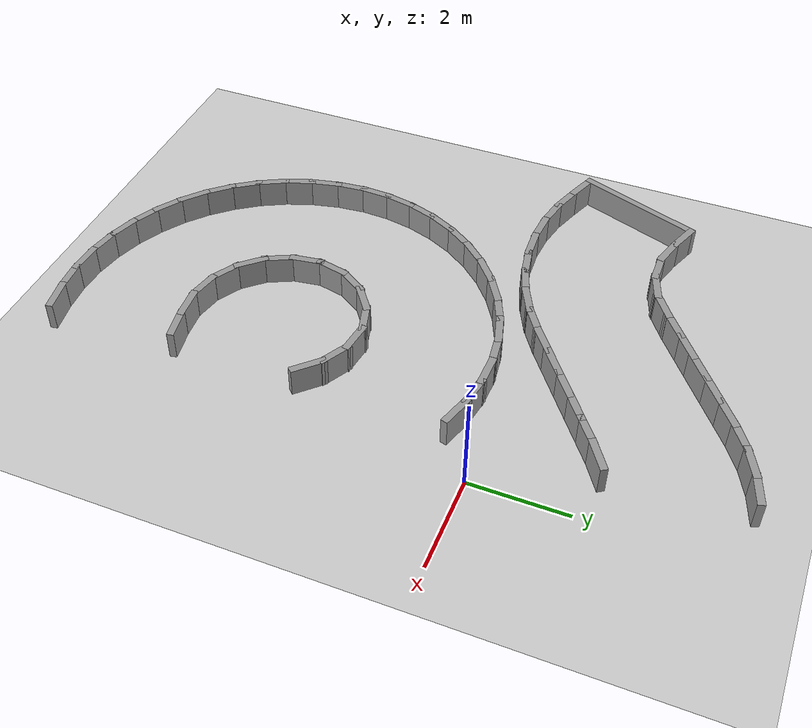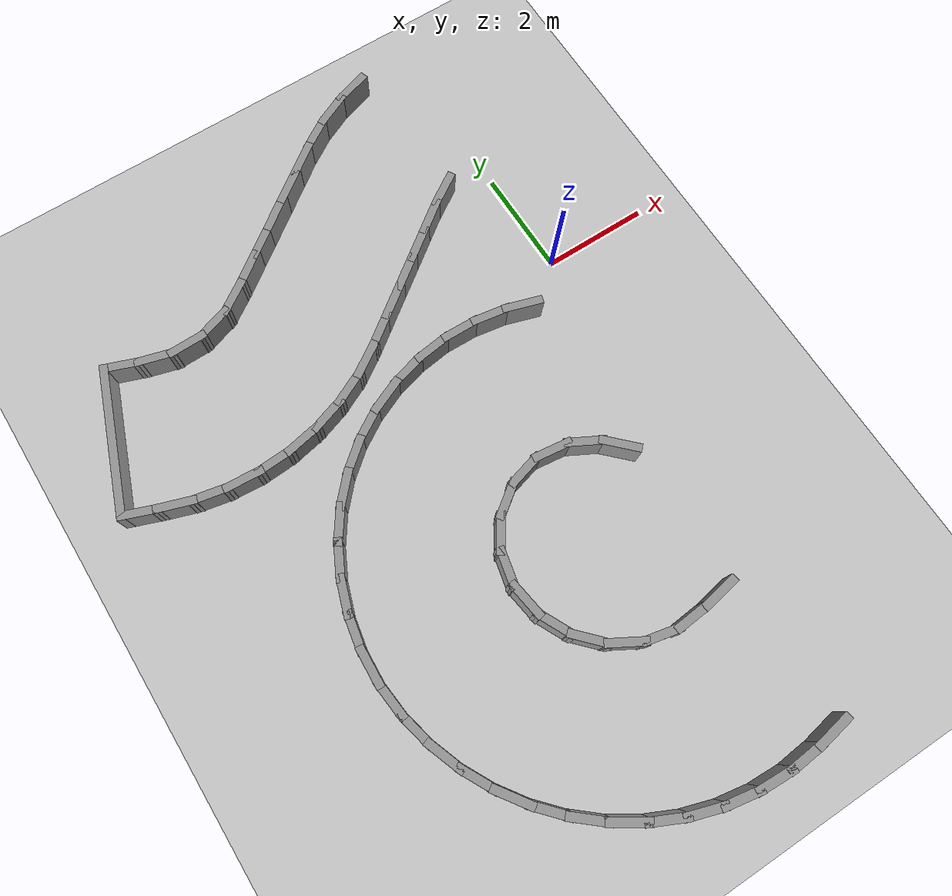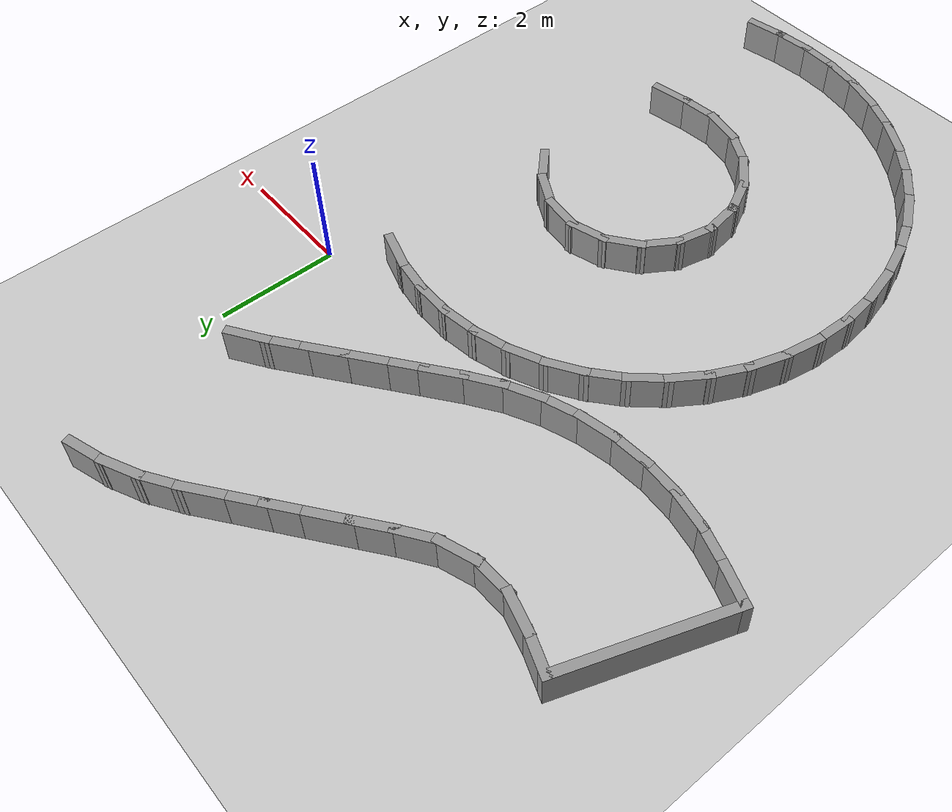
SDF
<sdf version="1.7">
 <world name="default">
  <model name="ground_plane">
   <static>1</static>
   <link name="link">
    <collision name="collision">
     <geometry><plane><normal>0 0 1</normal><size>100 100</size></plane></geometry>
     <surface><friction><ode><mu>100</mu><mu2>50</mu2></ode></friction></surface>
    </collision>
    <visual name="visual">
     <cast_shadows>0</cast_shadows>
     <geometry><plane><normal>0 0 1</normal><size>100 100</size></plane></geometry>
     <material>
      <script><uri>file://media/materials/scripts/gazebo.material</uri><name>Gazebo/Grey</name></script>
     </material>
    </visual>
   </link>
  </model>
  <model name="rand_turn_10">
   <link name="Wall_0">
    <collision name="Wall_0_Collision">
     <geometry><box><size>0.7500 0.1500 0.6000</size></box></geometry>
     <pose>0 0 0.3000 0 -0 0</pose>
    </collision>
    <visual name="Wall_0_Visual">
     <pose>0 0 0.3000 0 -0 0</pose>
     <geometry><box><size>0.7500 0.1500 0.6000</size></box></geometry>
     <material>
      <script><uri>file://media/materials/scripts/gazebo.material</uri><name>Gazebo/Grey</name></script>
      <ambient>1 1 1 1</ambient>
     </material>
    </visual>
    <pose>-7.6169 2.1796 0 0 -0 -0.35750</pose>
   </link>
   <link name="Wall_1">
    <collision name="Wall_1_Collision">
     <geometry><box><size>0.7483 0.1500 0.6000</size></box></geometry>
     <pose>0 0 0.3000 0 -0 0</pose>
    </collision>
    <visual name="Wall_1_Visual">
     <pose>0 0 0.3000 0 -0 0</pose>
     <geometry><box><size>0.7483 0.1500 0.6000</size></box></geometry>
     <material>
      <script><uri>file://media/materials/scripts/gazebo.material</uri><name>Gazebo/Grey</name></script>
      <ambient>1 1 1 1</ambient>
     </material>
    </visual>
    <pose>-7.0479 1.9939 0 0 -0 -0.27353</pose>
   </link>
   <link name="Wall_2">
    <collision name="Wall_2_Collision">
     <geometry><box><size>0.7478 0.1500 0.6000</size></box></geometry>
     <pose>0 0 0.3000 0 -0 0</pose>
    </collision>
    <visual name="Wall_2_Visual">
     <pose>0 0 0.3000 0 -0 0</pose>
     <geometry><box><size>0.7478 0.1500 0.6000</size></box></geometry>
     <material>
      <script><uri>file://media/materials/scripts/gazebo.material</uri><name>Gazebo/Grey</name></script>
      <ambient>1 1 1 1</ambient>
     </material>
    </visual>
    <pose>-6.4610 1.9186 0 0 -0 0.01854</pose>
   </link>
   <link name="Wall_3">
    <collision name="Wall_3_Collision">
     <geometry><box><size>0.7478 0.1500 0.6000</size></box></geometry>
     <pose>0 0 0.3000 0 -0 0</pose>
    </collision>
    <visual name="Wall_3_Visual">
     <pose>0 0 0.3000 0 -0 0</pose>
     <geometry><box><size>0.7478 0.1500 0.6000</size></box></geometry>
     <material>
      <script><uri>file://media/materials/scripts/gazebo.material</uri><name>Gazebo/Grey</name></script>
      <ambient>1 1 1 1</ambient>
     </material>
    </visual>
    <pose>-5.8784 2.0180 0 0 -0 0.31936</pose>
   </link>
   <link name="Wall_4">
    <collision name="Wall_4_Collision">
     <geometry><box><size>0.7491 0.1500 0.6000</size></box></geometry>
     <pose>0 0 0.3000 0 -0 0</pose>
    </collision>
    <visual name="Wall_4_Visual">
     <pose>0 0 0.3000 0 -0 0</pose>
     <geometry><box><size>0.7491 0.1500 0.6000</size></box></geometry>
     <material>
      <script><uri>file://media/materials/scripts/gazebo.material</uri><name>Gazebo/Grey</name></script>
      <ambient>1 1 1 1</ambient>
     </material>
    </visual>
    <pose>-5.3456 2.2783 0 0 -0 0.58934</pose>
   </link>
   <link name="Wall_5">
    <collision name="Wall_5_Collision">
     <geometry><box><size>0.7500 0.1500 0.6000</size></box></geometry>
     <pose>0 0 0.3000 0 -0 0</pose>
    </collision>
    <visual name="Wall_5_Visual">
     <pose>0 0 0.3000 0 -0 0</pose>
     <geometry><box><size>0.7500 0.1500 0.6000</size></box></geometry>
     <material>
      <script><uri>file://media/materials/scripts/gazebo.material</uri><name>Gazebo/Grey</name></script>
      <ambient>1 1 1 1</ambient>
     </material>
    </visual>
    <pose>-4.8548 2.6224 0 0 -0 0.63349</pose>
   </link>
   <link name="Wall_6">
    <collision name="Wall_6_Collision">
     <geometry><box><size>0.7500 0.1500 0.6000</size></box></geometry>
     <pose>0 0 0.3000 0 -0 0</pose>
    </collision>
    <visual name="Wall_6_Visual">
     <pose>0 0 0.3000 0 -0 0</pose>
     <geometry><box><size>0.7500 0.1500 0.6000</size></box></geometry>
     <material>
      <script><uri>file://media/materials/scripts/gazebo.material</uri><name>Gazebo/Grey</name></script>
      <ambient>1 1 1 1</ambient>
     </material>
    </visual>
    <pose>-4.3712 2.9776 0 0 -0 0.63349</pose>
   </link>
   <link name="Wall_7">
    <collision name="Wall_7_Collision">
     <geometry><box><size>0.7500 0.1500 0.6000</size></box></geometry>
     <pose>0 0 0.3000 0 -0 0</pose>
    </collision>
    <visual name="Wall_7_Visual">
     <pose>0 0 0.3000 0 -0 0</pose>
     <geometry><box><size>0.7500 0.1500 0.6000</size></box></geometry>
     <material>
      <script><uri>file://media/materials/scripts/gazebo.material</uri><name>Gazebo/Grey</name></script>
      <ambient>1 1 1 1</ambient>
     </material>
    </visual>
    <pose>-3.8876 3.3327 0 0 -0 0.63349</pose>
   </link>
   <link name="Wall_8">
    <collision name="Wall_8_Collision">
     <geometry><box><size>0.7500 0.1500 0.6000</size></box></geometry>
     <pose>0 0 0.3000 0 -0 0</pose>
    </collision>
    <visual name="Wall_8_Visual">
     <pose>0 0 0.3000 0 -0 0</pose>
     <geometry><box><size>0.7500 0.1500 0.6000</size></box></geometry>
     <material>
      <script><uri>file://media/materials/scripts/gazebo.material</uri><name>Gazebo/Grey</name></script>
      <ambient>1 1 1 1</ambient>
     </material>
    </visual>
    <pose>-3.4040 3.6879 0 0 -0 0.63349</pose>
   </link>
   <link name="Wall_9">
    <collision name="Wall_9_Collision">
     <geometry><box><size>0.7500 0.1500 0.6000</size></box></geometry>
     <pose>0 0 0.3000 0 -0 0</pose>
    </collision>
    <visual name="Wall_9_Visual">
     <pose>0 0 0.3000 0 -0 0</pose>
     <geometry><box><size>0.7500 0.1500 0.6000</size></box></geometry>
     <material>
      <script><uri>file://media/materials/scripts/gazebo.material</uri><name>Gazebo/Grey</name></script>
      <ambient>1 1 1 1</ambient>
     </material>
    </visual>
    <pose>-2.9204 4.0431 0 0 -0 0.63331</pose>
   </link>
   <link name="Wall_10">
    <collision name="Wall_10_Collision">
     <geometry><box><size>0.7496 0.1500 0.6000</size></box></geometry>
     <pose>0 0 0.3000 0 -0 0</pose>
    </collision>
    <visual name="Wall_10_Visual">
     <pose>0 0 0.3000 0 -0 0</pose>
     <geometry><box><size>0.7496 0.1500 0.6000</size></box></geometry>
     <material>
      <script><uri>file://media/materials/scripts/gazebo.material</uri><name>Gazebo/Grey</name></script>
      <ambient>1 1 1 1</ambient>
     </material>
    </visual>
    <pose>-2.4254 4.3810 0 0 -0 0.56464</pose>
   </link>
   <link name="Wall_11">
    <collision name="Wall_11_Collision">
     <geometry><box><size>0.7495 0.1500 0.6000</size></box></geometry>
     <pose>0 0 0.3000 0 -0 0</pose>
    </collision>
    <visual name="Wall_11_Visual">
     <pose>0 0 0.3000 0 -0 0</pose>
     <geometry><box><size>0.7495 0.1500 0.6000</size></box></geometry>
     <material>
      <script><uri>file://media/materials/scripts/gazebo.material</uri><name>Gazebo/Grey</name></script>
      <ambient>1 1 1 1</ambient>
     </material>
    </visual>
    <pose>-1.9003 4.6679 0 0 -0 0.43535</pose>
   </link>
   <link name="Wall_12">
    <collision name="Wall_12_Collision">
     <geometry><box><size>0.7496 0.1500 0.6000</size></box></geometry>
     <pose>0 0 0.3000 0 -0 0</pose>
    </collision>
    <visual name="Wall_12_Visual">
     <pose>0 0 0.3000 0 -0 0</pose>
     <geometry><box><size>0.7496 0.1500 0.6000</size></box></geometry>
     <material>
      <script><uri>file://media/materials/scripts/gazebo.material</uri><name>Gazebo/Grey</name></script>
      <ambient>1 1 1 1</ambient>
     </material>
    </visual>
    <pose>-1.3426 4.8845 0 0 -0 0.30587</pose>
   </link>
   <link name="Wall_52">
    <collision name="Wall_52_Collision">
     <geometry><box><size>0.7500 0.1500 0.6000</size></box></geometry>
     <pose>0 0 0.3000 0 -0 0</pose>
    </collision>
    <visual name="Wall_52_Visual">
     <pose>0 0 0.3000 0 -0 0</pose>
     <geometry><box><size>0.7500 0.1500 0.6000</size></box></geometry>
     <material>
      <script><uri>file://media/materials/scripts/gazebo.material</uri><name>Gazebo/Grey</name></script>
      <ambient>1 1 1 1</ambient>
     </material>
    </visual>
    <pose>-1.0157 -9.1596 0 0 -0 -2.96981</pose>
   </link>
   <link name="Wall_53">
    <collision name="Wall_53_Collision">
     <geometry><box><size>0.7496 0.1500 0.6000</size></box></geometry>
     <pose>0 0 0.3000 0 -0 0</pose>
    </collision>
    <visual name="Wall_53_Visual">
     <pose>0 0 0.3000 0 -0 0</pose>
     <geometry><box><size>0.7496 0.1500 0.6000</size></box></geometry>
     <material>
      <script><uri>file://media/materials/scripts/gazebo.material</uri><name>Gazebo/Grey</name></script>
      <ambient>1 1 1 1</ambient>
     </material>
    </visual>
    <pose>-1.6101 -9.2348 0 0 -0 -3.06193</pose>
   </link>
   <link name="Wall_54">
    <collision name="Wall_54_Collision">
     <geometry><box><size>0.7495 0.1500 0.6000</size></box></geometry>
     <pose>0 0 0.3000 0 -0 0</pose>
    </collision>
    <visual name="Wall_54_Visual">
     <pose>0 0 0.3000 0 -0 0</pose>
     <geometry><box><size>0.7495 0.1500 0.6000</size></box></geometry>
     <material>
      <script><uri>file://media/materials/scripts/gazebo.material</uri><name>Gazebo/Grey</name></script>
      <ambient>1 1 1 1</ambient>
     </material>
    </visual>
    <pose>-2.2083 -9.2439 0 0 -0 3.09248</pose>
   </link>
   <link name="Wall_55">
    <collision name="Wall_55_Collision">
     <geometry><box><size>0.7496 0.1500 0.6000</size></box></geometry>
     <pose>0 0 0.3000 0 -0 0</pose>
    </collision>
    <visual name="Wall_55_Visual">
     <pose>0 0 0.3000 0 -0 0</pose>
     <geometry><box><size>0.7496 0.1500 0.6000</size></box></geometry>
     <material>
      <script><uri>file://media/materials/scripts/gazebo.material</uri><name>Gazebo/Grey</name></script>
      <ambient>1 1 1 1</ambient>
     </material>
    </visual>
    <pose>-2.8028 -9.1761 0 0 -0 2.96370</pose>
   </link>
   <link name="Wall_56">
    <collision name="Wall_56_Collision">
     <geometry><box><size>0.7496 0.1500 0.6000</size></box></geometry>
     <pose>0 0 0.3000 0 -0 0</pose>
    </collision>
    <visual name="Wall_56_Visual">
     <pose>0 0 0.3000 0 -0 0</pose>
     <geometry><box><size>0.7496 0.1500 0.6000</size></box></geometry>
     <material>
      <script><uri>file://media/materials/scripts/gazebo.material</uri><name>Gazebo/Grey</name></script>
      <ambient>1 1 1 1</ambient>
     </material>
    </visual>
    <pose>-3.3835 -9.0323 0 0 -0 2.83393</pose>
   </link>
   <link name="Wall_57">
    <collision name="Wall_57_Collision">
     <geometry><box><size>0.7496 0.1500 0.6000</size></box></geometry>
     <pose>0 0 0.3000 0 -0 0</pose>
    </collision>
    <visual name="Wall_57_Visual">
     <pose>0 0 0.3000 0 -0 0</pose>
     <geometry><box><size>0.7496 0.1500 0.6000</size></box></geometry>
     <material>
      <script><uri>file://media/materials/scripts/gazebo.material</uri><name>Gazebo/Grey</name></script>
      <ambient>1 1 1 1</ambient>
     </material>
    </visual>
    <pose>-3.9408 -8.8145 0 0 -0 2.70414</pose>
   </link>
   <link name="Wall_58">
    <collision name="Wall_58_Collision">
     <geometry><box><size>0.7495 0.1500 0.6000</size></box></geometry>
     <pose>0 0 0.3000 0 -0 0</pose>
    </collision>
    <visual name="Wall_58_Visual">
     <pose>0 0 0.3000 0 -0 0</pose>
     <geometry><box><size>0.7495 0.1500 0.6000</size></box></geometry>
     <material>
      <script><uri>file://media/materials/scripts/gazebo.material</uri><name>Gazebo/Grey</name></script>
      <ambient>1 1 1 1</ambient>
     </material>
    </visual>
    <pose>-4.4653 -8.5267 0 0 -0 2.57536</pose>
   </link>
   <link name="Wall_59">
    <collision name="Wall_59_Collision">
     <geometry><box><size>0.7496 0.1500 0.6000</size></box></geometry>
     <pose>0 0 0.3000 0 -0 0</pose>
    </collision>
    <visual name="Wall_59_Visual">
     <pose>0 0 0.3000 0 -0 0</pose>
     <geometry><box><size>0.7496 0.1500 0.6000</size></box></geometry>
     <material>
      <script><uri>file://media/materials/scripts/gazebo.material</uri><name>Gazebo/Grey</name></script>
      <ambient>1 1 1 1</ambient>
     </material>
    </visual>
    <pose>-4.9486 -8.1739 0 0 -0 2.44658</pose>
   </link>
   <link name="Wall_60">
    <collision name="Wall_60_Collision">
     <geometry><box><size>0.7496 0.1500 0.6000</size></box></geometry>
     <pose>0 0 0.3000 0 -0 0</pose>
    </collision>
    <visual name="Wall_60_Visual">
     <pose>0 0 0.3000 0 -0 0</pose>
     <geometry><box><size>0.7496 0.1500 0.6000</size></box></geometry>
     <material>
      <script><uri>file://media/materials/scripts/gazebo.material</uri><name>Gazebo/Grey</name></script>
      <ambient>1 1 1 1</ambient>
     </material>
    </visual>
    <pose>-5.3821 -7.7616 0 0 -0 2.31584</pose>
   </link>
   <link name="Wall_61">
    <collision name="Wall_61_Collision">
     <geometry><box><size>0.7495 0.1500 0.6000</size></box></geometry>
     <pose>0 0 0.3000 0 -0 0</pose>
    </collision>
    <visual name="Wall_61_Visual">
     <pose>0 0 0.3000 0 -0 0</pose>
     <geometry><box><size>0.7495 0.1500 0.6000</size></box></geometry>
     <material>
      <script><uri>file://media/materials/scripts/gazebo.material</uri><name>Gazebo/Grey</name></script>
      <ambient>1 1 1 1</ambient>
     </material>
    </visual>
    <pose>-5.7586 -7.2966 0 0 -0 2.18702</pose>
   </link>
   <link name="Wall_62">
    <collision name="Wall_62_Collision">
     <geometry><box><size>0.7496 0.1500 0.6000</size></box></geometry>
     <pose>0 0 0.3000 0 -0 0</pose>
    </collision>
    <visual name="Wall_62_Visual">
     <pose>0 0 0.3000 0 -0 0</pose>
     <geometry><box><size>0.7496 0.1500 0.6000</size></box></geometry>
     <material>
      <script><uri>file://media/materials/scripts/gazebo.material</uri><name>Gazebo/Grey</name></script>
      <ambient>1 1 1 1</ambient>
     </material>
    </visual>
    <pose>-6.0723 -6.7871 0 0 -0 2.05825</pose>
   </link>
   <link name="Wall_63">
    <collision name="Wall_63_Collision">
     <geometry><box><size>0.7496 0.1500 0.6000</size></box></geometry>
     <pose>0 0 0.3000 0 -0 0</pose>
    </collision>
    <visual name="Wall_63_Visual">
     <pose>0 0 0.3000 0 -0 0</pose>
     <geometry><box><size>0.7496 0.1500 0.6000</size></box></geometry>
     <material>
      <script><uri>file://media/materials/scripts/gazebo.material</uri><name>Gazebo/Grey</name></script>
      <ambient>1 1 1 1</ambient>
     </material>
    </visual>
    <pose>-6.3176 -6.2414 0 0 -0 1.92853</pose>
   </link>
   <link name="Wall_64">
    <collision name="Wall_64_Collision">
     <geometry><box><size>0.7496 0.1500 0.6000</size></box></geometry>
     <pose>0 0 0.3000 0 -0 0</pose>
    </collision>
    <visual name="Wall_64_Visual">
     <pose>0 0 0.3000 0 -0 0</pose>
     <geometry><box><size>0.7496 0.1500 0.6000</size></box></geometry>
     <material>
      <script><uri>file://media/materials/scripts/gazebo.material</uri><name>Gazebo/Grey</name></script>
      <ambient>1 1 1 1</ambient>
     </material>
    </visual>
    <pose>-6.4903 -5.6686 0 0 -0 1.79869</pose>
   </link>
   <link name="Wall_65">
    <collision name="Wall_65_Collision">
     <geometry><box><size>0.7494 0.1500 0.6000</size></box></geometry>
     <pose>0 0 0.3000 0 -0 0</pose>
    </collision>
    <visual name="Wall_65_Visual">
     <pose>0 0 0.3000 0 -0 0</pose>
     <geometry><box><size>0.7494 0.1500 0.6000</size></box></geometry>
     <material>
      <script><uri>file://media/materials/scripts/gazebo.material</uri><name>Gazebo/Grey</name></script>
      <ambient>1 1 1 1</ambient>
     </material>
    </visual>
    <pose>-6.5869 -5.0782 0 0 -0 1.66726</pose>
   </link>
   <link name="Wall_66">
    <collision name="Wall_66_Collision">
     <geometry><box><size>0.7495 0.1500 0.6000</size></box></geometry>
     <pose>0 0 0.3000 0 -0 0</pose>
    </collision>
    <visual name="Wall_66_Visual">
     <pose>0 0 0.3000 0 -0 0</pose>
     <geometry><box><size>0.7495 0.1500 0.6000</size></box></geometry>
     <material>
      <script><uri>file://media/materials/scripts/gazebo.material</uri><name>Gazebo/Grey</name></script>
      <ambient>1 1 1 1</ambient>
     </material>
    </visual>
    <pose>-6.6006 -4.4806 0 0 -0 1.51997</pose>
   </link>
   <link name="Wall_67">
    <collision name="Wall_67_Collision">
     <geometry><box><size>0.7495 0.1500 0.6000</size></box></geometry>
     <pose>0 0 0.3000 0 -0 0</pose>
    </collision>
    <visual name="Wall_67_Visual">
     <pose>0 0 0.3000 0 -0 0</pose>
     <geometry><box><size>0.7495 0.1500 0.6000</size></box></geometry>
     <material>
      <script><uri>file://media/materials/scripts/gazebo.material</uri><name>Gazebo/Grey</name></script>
      <ambient>1 1 1 1</ambient>
     </material>
    </visual>
    <pose>-6.5289 -3.8868 0 0 -0 1.38127</pose>
   </link>
   <link name="Wall_68">
    <collision name="Wall_68_Collision">
     <geometry><box><size>0.7495 0.1500 0.6000</size></box></geometry>
     <pose>0 0 0.3000 0 -0 0</pose>
    </collision>
    <visual name="Wall_68_Visual">
     <pose>0 0 0.3000 0 -0 0</pose>
     <geometry><box><size>0.7495 0.1500 0.6000</size></box></geometry>
     <material>
      <script><uri>file://media/materials/scripts/gazebo.material</uri><name>Gazebo/Grey</name></script>
      <ambient>1 1 1 1</ambient>
     </material>
    </visual>
    <pose>-6.3758 -3.3087 0 0 -0 1.24278</pose>
   </link>
   <link name="Wall_69">
    <collision name="Wall_69_Collision">
     <geometry><box><size>0.7495 0.1500 0.6000</size></box></geometry>
     <pose>0 0 0.3000 0 -0 0</pose>
    </collision>
    <visual name="Wall_69_Visual">
     <pose>0 0 0.3000 0 -0 0</pose>
     <geometry><box><size>0.7495 0.1500 0.6000</size></box></geometry>
     <material>
      <script><uri>file://media/materials/scripts/gazebo.material</uri><name>Gazebo/Grey</name></script>
      <ambient>1 1 1 1</ambient>
     </material>
    </visual>
    <pose>-6.1442 -2.7573 0 0 -0 1.10325</pose>
   </link>
   <link name="Wall_70">
    <collision name="Wall_70_Collision">
     <geometry><box><size>0.7495 0.1500 0.6000</size></box></geometry>
     <pose>0 0 0.3000 0 -0 0</pose>
    </collision>
    <visual name="Wall_70_Visual">
     <pose>0 0 0.3000 0 -0 0</pose>
     <geometry><box><size>0.7495 0.1500 0.6000</size></box></geometry>
     <material>
      <script><uri>file://media/materials/scripts/gazebo.material</uri><name>Gazebo/Grey</name></script>
      <ambient>1 1 1 1</ambient>
     </material>
    </visual>
    <pose>-5.8383 -2.2434 0 0 -0 0.96452</pose>
   </link>
   <link name="Wall_71">
    <collision name="Wall_71_Collision">
     <geometry><box><size>0.7495 0.1500 0.6000</size></box></geometry>
     <pose>0 0 0.3000 0 -0 0</pose>
    </collision>
    <visual name="Wall_71_Visual">
     <pose>0 0 0.3000 0 -0 0</pose>
     <geometry><box><size>0.7495 0.1500 0.6000</size></box></geometry>
     <material>
      <script><uri>file://media/materials/scripts/gazebo.material</uri><name>Gazebo/Grey</name></script>
      <ambient>1 1 1 1</ambient>
     </material>
    </visual>
    <pose>-5.4643 -1.7767 0 0 -0 0.82603</pose>
   </link>
   <link name="Wall_72">
    <collision name="Wall_72_Collision">
     <geometry><box><size>0.7495 0.1500 0.6000</size></box></geometry>
     <pose>0 0 0.3000 0 -0 0</pose>
    </collision>
    <visual name="Wall_72_Visual">
     <pose>0 0 0.3000 0 -0 0</pose>
     <geometry><box><size>0.7495 0.1500 0.6000</size></box></geometry>
     <material>
      <script><uri>file://media/materials/scripts/gazebo.material</uri><name>Gazebo/Grey</name></script>
      <ambient>1 1 1 1</ambient>
     </material>
    </visual>
    <pose>-5.0295 -1.3661 0 0 -0 0.68755</pose>
   </link>
   <link name="Wall_73">
    <collision name="Wall_73_Collision">
     <geometry><box><size>0.7495 0.1500 0.6000</size></box></geometry>
     <pose>0 0 0.3000 0 -0 0</pose>
    </collision>
    <visual name="Wall_73_Visual">
     <pose>0 0 0.3000 0 -0 0</pose>
     <geometry><box><size>0.7495 0.1500 0.6000</size></box></geometry>
     <material>
      <script><uri>file://media/materials/scripts/gazebo.material</uri><name>Gazebo/Grey</name></script>
      <ambient>1 1 1 1</ambient>
     </material>
    </visual>
    <pose>-4.5422 -1.0194 0 0 -0 0.54906</pose>
   </link>
   <link name="Wall_74">
    <collision name="Wall_74_Collision">
     <geometry><box><size>0.7495 0.1500 0.6000</size></box></geometry>
     <pose>0 0 0.3000 0 -0 0</pose>
    </collision>
    <visual name="Wall_74_Visual">
     <pose>0 0 0.3000 0 -0 0</pose>
     <geometry><box><size>0.7495 0.1500 0.6000</size></box></geometry>
     <material>
      <script><uri>file://media/materials/scripts/gazebo.material</uri><name>Gazebo/Grey</name></script>
      <ambient>1 1 1 1</ambient>
     </material>
    </visual>
    <pose>-4.0117 -0.7434 0 0 -0 0.41057</pose>
   </link>
   <link name="Wall_75">
    <collision name="Wall_75_Collision">
     <geometry><box><size>0.7495 0.1500 0.6000</size></box></geometry>
     <pose>0 0 0.3000 0 -0 0</pose>
    </collision>
    <visual name="Wall_75_Visual">
     <pose>0 0 0.3000 0 -0 0</pose>
     <geometry><box><size>0.7495 0.1500 0.6000</size></box></geometry>
     <material>
      <script><uri>file://media/materials/scripts/gazebo.material</uri><name>Gazebo/Grey</name></script>
      <ambient>1 1 1 1</ambient>
     </material>
    </visual>
    <pose>-3.4480 -0.5434 0 0 -0 0.27133</pose>
   </link>
   <link name="Wall_76">
    <collision name="Wall_76_Collision">
     <geometry><box><size>0.7495 0.1500 0.6000</size></box></geometry>
     <pose>0 0 0.3000 0 -0 0</pose>
    </collision>
    <visual name="Wall_76_Visual">
     <pose>0 0 0.3000 0 -0 0</pose>
     <geometry><box><size>0.7495 0.1500 0.6000</size></box></geometry>
     <material>
      <script><uri>file://media/materials/scripts/gazebo.material</uri><name>Gazebo/Grey</name></script>
      <ambient>1 1 1 1</ambient>
     </material>
    </visual>
    <pose>-2.8621 -0.4236 0 0 -0 0.13189</pose>
   </link>
   <link name="Wall_77">
    <collision name="Wall_77_Collision">
     <geometry><box><size>0.7495 0.1500 0.6000</size></box></geometry>
     <pose>0 0 0.3000 0 -0 0</pose>
    </collision>
    <visual name="Wall_77_Visual">
     <pose>0 0 0.3000 0 -0 0</pose>
     <geometry><box><size>0.7495 0.1500 0.6000</size></box></geometry>
     <material>
      <script><uri>file://media/materials/scripts/gazebo.material</uri><name>Gazebo/Grey</name></script>
      <ambient>1 1 1 1</ambient>
     </material>
    </visual>
    <pose>-2.2653 -0.3897 0 0 -0 -0.01845</pose>
   </link>
   <link name="Wall_78">
    <collision name="Wall_78_Collision">
     <geometry><box><size>0.7495 0.1500 0.6000</size></box></geometry>
     <pose>0 0 0.3000 0 -0 0</pose>
    </collision>
    <visual name="Wall_78_Visual">
     <pose>0 0 0.3000 0 -0 0</pose>
     <geometry><box><size>0.7495 0.1500 0.6000</size></box></geometry>
     <material>
      <script><uri>file://media/materials/scripts/gazebo.material</uri><name>Gazebo/Grey</name></script>
      <ambient>1 1 1 1</ambient>
     </material>
    </visual>
    <pose>-1.6696 -0.4426 0 0 -0 -0.15844</pose>
   </link>
   <link name="Wall_79">
    <collision name="Wall_79_Collision">
     <geometry><box><size>0.7495 0.1500 0.6000</size></box></geometry>
     <pose>0 0 0.3000 0 -0 0</pose>
    </collision>
    <visual name="Wall_79_Visual">
     <pose>0 0 0.3000 0 -0 0</pose>
     <geometry><box><size>0.7495 0.1500 0.6000</size></box></geometry>
     <material>
      <script><uri>file://media/materials/scripts/gazebo.material</uri><name>Gazebo/Grey</name></script>
      <ambient>1 1 1 1</ambient>
     </material>
    </visual>
    <pose>-1.0871 -0.5779 0 0 -0 -0.29810</pose>
   </link>
   <link name="Wall_85">
    <collision name="Wall_85_Collision">
     <geometry><box><size>0.7500 0.1500 0.6000</size></box></geometry>
     <pose>0 0 0.3000 0 -0 0</pose>
    </collision>
    <visual name="Wall_85_Visual">
     <pose>0 0 0.3000 0 -0 0</pose>
     <geometry><box><size>0.7500 0.1500 0.6000</size></box></geometry>
     <material>
      <script><uri>file://media/materials/scripts/gazebo.material</uri><name>Gazebo/Grey</name></script>
      <ambient>1 1 1 1</ambient>
     </material>
    </visual>
    <pose>-8.5453 -0.3055 0 0 -0 -0.35750</pose>
   </link>
   <link name="Wall_86">
    <collision name="Wall_86_Collision">
     <geometry><box><size>0.7497 0.1500 0.6000</size></box></geometry>
     <pose>0 0 0.3000 0 -0 0</pose>
    </collision>
    <visual name="Wall_86_Visual">
     <pose>0 0 0.3000 0 -0 0</pose>
     <geometry><box><size>0.7497 0.1500 0.6000</size></box></geometry>
     <material>
      <script><uri>file://media/materials/scripts/gazebo.material</uri><name>Gazebo/Grey</name></script>
      <ambient>1 1 1 1</ambient>
     </material>
    </visual>
    <pose>-7.9797 -0.5051 0 0 -0 -0.32110</pose>
   </link>
   <link name="Wall_87">
    <collision name="Wall_87_Collision">
     <geometry><box><size>0.7496 0.1500 0.6000</size></box></geometry>
     <pose>0 0 0.3000 0 -0 0</pose>
    </collision>
    <visual name="Wall_87_Visual">
     <pose>0 0 0.3000 0 -0 0</pose>
     <geometry><box><size>0.7496 0.1500 0.6000</size></box></geometry>
     <material>
      <script><uri>file://media/materials/scripts/gazebo.material</uri><name>Gazebo/Grey</name></script>
      <ambient>1 1 1 1</ambient>
     </material>
    </visual>
    <pose>-7.4012 -0.6584 0 0 -0 -0.19681</pose>
   </link>
   <link name="Wall_88">
    <collision name="Wall_88_Collision">
     <geometry><box><size>0.7496 0.1500 0.6000</size></box></geometry>
     <pose>0 0 0.3000 0 -0 0</pose>
    </collision>
    <visual name="Wall_88_Visual">
     <pose>0 0 0.3000 0 -0 0</pose>
     <geometry><box><size>0.7496 0.1500 0.6000</size></box></geometry>
     <material>
      <script><uri>file://media/materials/scripts/gazebo.material</uri><name>Gazebo/Grey</name></script>
      <ambient>1 1 1 1</ambient>
     </material>
    </visual>
    <pose>-6.8081 -0.7369 0 0 -0 -0.06630</pose>
   </link>
   <link name="Wall_89">
    <collision name="Wall_89_Collision">
     <geometry><box><size>0.7495 0.1500 0.6000</size></box></geometry>
     <pose>0 0 0.3000 0 -0 0</pose>
    </collision>
    <visual name="Wall_89_Visual">
     <pose>0 0 0.3000 0 -0 0</pose>
     <geometry><box><size>0.7495 0.1500 0.6000</size></box></geometry>
     <material>
      <script><uri>file://media/materials/scripts/gazebo.material</uri><name>Gazebo/Grey</name></script>
      <ambient>1 1 1 1</ambient>
     </material>
    </visual>
    <pose>-6.2097 -0.7381 0 0 -0 0.06223</pose>
   </link>
   <link name="Wall_90">
    <collision name="Wall_90_Collision">
     <geometry><box><size>0.7496 0.1500 0.6000</size></box></geometry>
     <pose>0 0 0.3000 0 -0 0</pose>
    </collision>
    <visual name="Wall_90_Visual">
     <pose>0 0 0.3000 0 -0 0</pose>
     <geometry><box><size>0.7496 0.1500 0.6000</size></box></geometry>
     <material>
      <script><uri>file://media/materials/scripts/gazebo.material</uri><name>Gazebo/Grey</name></script>
      <ambient>1 1 1 1</ambient>
     </material>
    </visual>
    <pose>-5.6162 -0.6626 0 0 -0 0.19075</pose>
   </link>
   <link name="Wall_91">
    <collision name="Wall_91_Collision">
     <geometry><box><size>0.7496 0.1500 0.6000</size></box></geometry>
     <pose>0 0 0.3000 0 -0 0</pose>
    </collision>
    <visual name="Wall_91_Visual">
     <pose>0 0 0.3000 0 -0 0</pose>
     <geometry><box><size>0.7496 0.1500 0.6000</size></box></geometry>
     <material>
      <script><uri>file://media/materials/scripts/gazebo.material</uri><name>Gazebo/Grey</name></script>
      <ambient>1 1 1 1</ambient>
     </material>
    </visual>
    <pose>-5.0373 -0.5114 0 0 -0 0.32036</pose>
   </link>
   <link name="Wall_92">
    <collision name="Wall_92_Collision">
     <geometry><box><size>0.7496 0.1500 0.6000</size></box></geometry>
     <pose>0 0 0.3000 0 -0 0</pose>
    </collision>
    <visual name="Wall_92_Visual">
     <pose>0 0 0.3000 0 -0 0</pose>
     <geometry><box><size>0.7496 0.1500 0.6000</size></box></geometry>
     <material>
      <script><uri>file://media/materials/scripts/gazebo.material</uri><name>Gazebo/Grey</name></script>
      <ambient>1 1 1 1</ambient>
     </material>
    </visual>
    <pose>-4.4829 -0.2866 0 0 -0 0.44982</pose>
   </link>
   <link name="Wall_93">
    <collision name="Wall_93_Collision">
     <geometry><box><size>0.7496 0.1500 0.6000</size></box></geometry>
     <pose>0 0 0.3000 0 -0 0</pose>
    </collision>
    <visual name="Wall_93_Visual">
     <pose>0 0 0.3000 0 -0 0</pose>
     <geometry><box><size>0.7496 0.1500 0.6000</size></box></geometry>
     <material>
      <script><uri>file://media/materials/scripts/gazebo.material</uri><name>Gazebo/Grey</name></script>
      <ambient>1 1 1 1</ambient>
     </material>
    </visual>
    <pose>-3.9618 0.0075 0 0 -0 0.57775</pose>
   </link>
   <link name="Wall_94">
    <collision name="Wall_94_Collision">
     <geometry><box><size>0.7500 0.1500 0.6000</size></box></geometry>
     <pose>0 0 0.3000 0 -0 0</pose>
    </collision>
    <visual name="Wall_94_Visual">
     <pose>0 0 0.3000 0 -0 0</pose>
     <geometry><box><size>0.7500 0.1500 0.6000</size></box></geometry>
     <material>
      <script><uri>file://media/materials/scripts/gazebo.material</uri><name>Gazebo/Grey</name></script>
      <ambient>1 1 1 1</ambient>
     </material>
    </visual>
    <pose>-3.4688 0.3488 0 0 -0 0.63347</pose>
   </link>
   <link name="Wall_95">
    <collision name="Wall_95_Collision">
     <geometry><box><size>0.7500 0.1500 0.6000</size></box></geometry>
     <pose>0 0 0.3000 0 -0 0</pose>
    </collision>
    <visual name="Wall_95_Visual">
     <pose>0 0 0.3000 0 -0 0</pose>
     <geometry><box><size>0.7500 0.1500 0.6000</size></box></geometry>
     <material>
      <script><uri>file://media/materials/scripts/gazebo.material</uri><name>Gazebo/Grey</name></script>
      <ambient>1 1 1 1</ambient>
     </material>
    </visual>
    <pose>-2.9853 0.7039 0 0 -0 0.63349</pose>
   </link>
   <link name="Wall_96">
    <collision name="Wall_96_Collision">
     <geometry><box><size>0.7500 0.1500 0.6000</size></box></geometry>
     <pose>0 0 0.3000 0 -0 0</pose>
    </collision>
    <visual name="Wall_96_Visual">
     <pose>0 0 0.3000 0 -0 0</pose>
     <geometry><box><size>0.7500 0.1500 0.6000</size></box></geometry>
     <material>
      <script><uri>file://media/materials/scripts/gazebo.material</uri><name>Gazebo/Grey</name></script>
      <ambient>1 1 1 1</ambient>
     </material>
    </visual>
    <pose>-2.5017 1.0591 0 0 -0 0.63349</pose>
   </link>
   <link name="Wall_97">
    <collision name="Wall_97_Collision">
     <geometry><box><size>0.7500 0.1500 0.6000</size></box></geometry>
     <pose>0 0 0.3000 0 -0 0</pose>
    </collision>
    <visual name="Wall_97_Visual">
     <pose>0 0 0.3000 0 -0 0</pose>
     <geometry><box><size>0.7500 0.1500 0.6000</size></box></geometry>
     <material>
      <script><uri>file://media/materials/scripts/gazebo.material</uri><name>Gazebo/Grey</name></script>
      <ambient>1 1 1 1</ambient>
     </material>
    </visual>
    <pose>-2.0181 1.4143 0 0 -0 0.63349</pose>
   </link>
   <link name="Wall_98">
    <collision name="Wall_98_Collision">
     <geometry><box><size>0.7500 0.1500 0.6000</size></box></geometry>
     <pose>0 0 0.3000 0 -0 0</pose>
    </collision>
    <visual name="Wall_98_Visual">
     <pose>0 0 0.3000 0 -0 0</pose>
     <geometry><box><size>0.7500 0.1500 0.6000</size></box></geometry>
     <material>
      <script><uri>file://media/materials/scripts/gazebo.material</uri><name>Gazebo/Grey</name></script>
      <ambient>1 1 1 1</ambient>
     </material>
    </visual>
    <pose>-1.5345 1.7695 0 0 -0 0.63349</pose>
   </link>
   <link name="Wall_99">
    <collision name="Wall_99_Collision">
     <geometry><box><size>0.7487 0.1500 0.6000</size></box></geometry>
     <pose>0 0 0.3000 0 -0 0</pose>
    </collision>
    <visual name="Wall_99_Visual">
     <pose>0 0 0.3000 0 -0 0</pose>
     <geometry><box><size>0.7487 0.1500 0.6000</size></box></geometry>
     <material>
      <script><uri>file://media/materials/scripts/gazebo.material</uri><name>Gazebo/Grey</name></script>
      <ambient>1 1 1 1</ambient>
     </material>
    </visual>
    <pose>-1.0407 2.1086 0 0 -0 0.56997</pose>
   </link>
   <link name="Wall_125">
    <collision name="Wall_125_Collision">
     <geometry><box><size>0.7500 0.1500 0.6000</size></box></geometry>
     <pose>0 0 0.3000 0 -0 0</pose>
    </collision>
    <visual name="Wall_125_Visual">
     <pose>0 0 0.3000 0 -0 0</pose>
     <geometry><box><size>0.7500 0.1500 0.6000</size></box></geometry>
     <material>
      <script><uri>file://media/materials/scripts/gazebo.material</uri><name>Gazebo/Grey</name></script>
      <ambient>1 1 1 1</ambient>
     </material>
    </visual>
    <pose>-1.2029 -6.4997 0 0 -0 -2.96626</pose>
   </link>
   <link name="Wall_126">
    <collision name="Wall_126_Collision">
     <geometry><box><size>0.7482 0.1500 0.6000</size></box></geometry>
     <pose>0 0 0.3000 0 -0 0</pose>
    </collision>
    <visual name="Wall_126_Visual">
     <pose>0 0 0.3000 0 -0 0</pose>
     <geometry><box><size>0.7482 0.1500 0.6000</size></box></geometry>
     <material>
      <script><uri>file://media/materials/scripts/gazebo.material</uri><name>Gazebo/Grey</name></script>
      <ambient>1 1 1 1</ambient>
     </material>
    </visual>
    <pose>-1.7963 -6.5777 0 0 -0 -3.05567</pose>
   </link>
   <link name="Wall_127">
    <collision name="Wall_127_Collision">
     <geometry><box><size>0.7477 0.1500 0.6000</size></box></geometry>
     <pose>0 0 0.3000 0 -0 0</pose>
    </collision>
    <visual name="Wall_127_Visual">
     <pose>0 0 0.3000 0 -0 0</pose>
     <geometry><box><size>0.7477 0.1500 0.6000</size></box></geometry>
     <material>
      <script><uri>file://media/materials/scripts/gazebo.material</uri><name>Gazebo/Grey</name></script>
      <ambient>1 1 1 1</ambient>
     </material>
    </visual>
    <pose>-2.3867 -6.5417 0 0 -0 2.93381</pose>
   </link>
   <link name="Wall_128">
    <collision name="Wall_128_Collision">
     <geometry><box><size>0.7477 0.1500 0.6000</size></box></geometry>
     <pose>0 0 0.3000 0 -0 0</pose>
    </collision>
    <visual name="Wall_128_Visual">
     <pose>0 0 0.3000 0 -0 0</pose>
     <geometry><box><size>0.7477 0.1500 0.6000</size></box></geometry>
     <material>
      <script><uri>file://media/materials/scripts/gazebo.material</uri><name>Gazebo/Grey</name></script>
      <ambient>1 1 1 1</ambient>
     </material>
    </visual>
    <pose>-2.9400 -6.3342 0 0 -0 2.63167</pose>
   </link>
   <link name="Wall_129">
    <collision name="Wall_129_Collision">
     <geometry><box><size>0.7477 0.1500 0.6000</size></box></geometry>
     <pose>0 0 0.3000 0 -0 0</pose>
    </collision>
    <visual name="Wall_129_Visual">
     <pose>0 0 0.3000 0 -0 0</pose>
     <geometry><box><size>0.7477 0.1500 0.6000</size></box></geometry>
     <material>
      <script><uri>file://media/materials/scripts/gazebo.material</uri><name>Gazebo/Grey</name></script>
      <ambient>1 1 1 1</ambient>
     </material>
    </visual>
    <pose>-3.4064 -5.9714 0 0 -0 2.32953</pose>
   </link>
   <link name="Wall_130">
    <collision name="Wall_130_Collision">
     <geometry><box><size>0.7477 0.1500 0.6000</size></box></geometry>
     <pose>0 0 0.3000 0 -0 0</pose>
    </collision>
    <visual name="Wall_130_Visual">
     <pose>0 0 0.3000 0 -0 0</pose>
     <geometry><box><size>0.7477 0.1500 0.6000</size></box></geometry>
     <material>
      <script><uri>file://media/materials/scripts/gazebo.material</uri><name>Gazebo/Grey</name></script>
      <ambient>1 1 1 1</ambient>
     </material>
    </visual>
    <pose>-3.7438 -5.4863 0 0 -0 2.02740</pose>
   </link>
   <link name="Wall_131">
    <collision name="Wall_131_Collision">
     <geometry><box><size>0.7470 0.1500 0.6000</size></box></geometry>
     <pose>0 0 0.3000 0 -0 0</pose>
    </collision>
    <visual name="Wall_131_Visual">
     <pose>0 0 0.3000 0 -0 0</pose>
     <geometry><box><size>0.7470 0.1500 0.6000</size></box></geometry>
     <material>
      <script><uri>file://media/materials/scripts/gazebo.material</uri><name>Gazebo/Grey</name></script>
      <ambient>1 1 1 1</ambient>
     </material>
    </visual>
    <pose>-3.9190 -4.9228 0 0 -0 1.71704</pose>
   </link>
   <link name="Wall_132">
    <collision name="Wall_132_Collision">
     <geometry><box><size>0.7468 0.1500 0.6000</size></box></geometry>
     <pose>0 0 0.3000 0 -0 0</pose>
    </collision>
    <visual name="Wall_132_Visual">
     <pose>0 0 0.3000 0 -0 0</pose>
     <geometry><box><size>0.7468 0.1500 0.6000</size></box></geometry>
     <material>
      <script><uri>file://media/materials/scripts/gazebo.material</uri><name>Gazebo/Grey</name></script>
      <ambient>1 1 1 1</ambient>
     </material>
    </visual>
    <pose>-3.8965 -4.3365 0 0 -0 1.34770</pose>
   </link>
   <link name="Wall_133">
    <collision name="Wall_133_Collision">
     <geometry><box><size>0.7468 0.1500 0.6000</size></box></geometry>
     <pose>0 0 0.3000 0 -0 0</pose>
    </collision>
    <visual name="Wall_133_Visual">
     <pose>0 0 0.3000 0 -0 0</pose>
     <geometry><box><size>0.7468 0.1500 0.6000</size></box></geometry>
     <material>
      <script><uri>file://media/materials/scripts/gazebo.material</uri><name>Gazebo/Grey</name></script>
      <ambient>1 1 1 1</ambient>
     </material>
    </visual>
    <pose>-3.6665 -3.7962 0 0 -0 0.98890</pose>
   </link>
   <link name="Wall_134">
    <collision name="Wall_134_Collision">
     <geometry><box><size>0.7468 0.1500 0.6000</size></box></geometry>
     <pose>0 0 0.3000 0 -0 0</pose>
    </collision>
    <visual name="Wall_134_Visual">
     <pose>0 0 0.3000 0 -0 0</pose>
     <geometry><box><size>0.7468 0.1500 0.6000</size></box></geometry>
     <material>
      <script><uri>file://media/materials/scripts/gazebo.material</uri><name>Gazebo/Grey</name></script>
      <ambient>1 1 1 1</ambient>
     </material>
    </visual>
    <pose>-3.2614 -3.3711 0 0 -0 0.63017</pose>
   </link>
   <link name="Wall_135">
    <collision name="Wall_135_Collision">
     <geometry><box><size>0.7468 0.1500 0.6000</size></box></geometry>
     <pose>0 0 0.3000 0 -0 0</pose>
    </collision>
    <visual name="Wall_135_Visual">
     <pose>0 0 0.3000 0 -0 0</pose>
     <geometry><box><size>0.7468 0.1500 0.6000</size></box></geometry>
     <material>
      <script><uri>file://media/materials/scripts/gazebo.material</uri><name>Gazebo/Grey</name></script>
      <ambient>1 1 1 1</ambient>
     </material>
    </visual>
    <pose>-2.7329 -3.1151 0 0 -0 0.27197</pose>
   </link>
   <link name="Wall_136">
    <collision name="Wall_136_Collision">
     <geometry><box><size>0.7465 0.1500 0.6000</size></box></geometry>
     <pose>0 0 0.3000 0 -0 0</pose>
    </collision>
    <visual name="Wall_136_Visual">
     <pose>0 0 0.3000 0 -0 0</pose>
     <geometry><box><size>0.7465 0.1500 0.6000</size></box></geometry>
     <material>
      <script><uri>file://media/materials/scripts/gazebo.material</uri><name>Gazebo/Grey</name></script>
      <ambient>1 1 1 1</ambient>
     </material>
    </visual>
    <pose>-2.1494 -3.0707 0 0 -0 -0.12009</pose>
   </link>
   <link name="Wall_137">
    <collision name="Wall_137_Collision">
     <geometry><box><size>0.7466 0.1500 0.6000</size></box></geometry>
     <pose>0 0 0.3000 0 -0 0</pose>
    </collision>
    <visual name="Wall_137_Visual">
     <pose>0 0 0.3000 0 -0 0</pose>
     <geometry><box><size>0.7466 0.1500 0.6000</size></box></geometry>
     <material>
      <script><uri>file://media/materials/scripts/gazebo.material</uri><name>Gazebo/Grey</name></script>
      <ambient>1 1 1 1</ambient>
     </material>
    </visual>
    <pose>-1.5898 -3.2461 0 0 -0 -0.48738</pose>
   </link>
   <link name="Wall_138">
    <collision name="Wall_138_Collision">
     <geometry><box><size>0.7495 0.1500 0.6000</size></box></geometry>
     <pose>0 0 0.3000 0 -0 0</pose>
    </collision>
    <visual name="Wall_138_Visual">
     <pose>0 0 0.3000 0 -0 0</pose>
     <geometry><box><size>0.7495 0.1500 0.6000</size></box></geometry>
     <material>
      <script><uri>file://media/materials/scripts/gazebo.material</uri><name>Gazebo/Grey</name></script>
      <ambient>1 1 1 1</ambient>
     </material>
    </visual>
    <pose>-1.1133 -3.5968 0 0 -0 -0.78085</pose>
   </link>
   <link name="Wall_140">
    <collision name="Wall_140_Collision">
     <geometry><box><size>2.8029 0.1500 0.6000</size></box></geometry>
     <pose>0 0 0.3000 0 -0 0</pose>
    </collision>
    <visual name="Wall_140_Visual">
     <pose>0 0 0.3000 0 -0 0</pose>
     <geometry><box><size>2.8029 0.1500 0.6000</size></box></geometry>
     <material>
      <script><uri>file://media/materials/scripts/gazebo.material</uri><name>Gazebo/Grey</name></script>
      <ambient>1 1 1 1</ambient>
     </material>
    </visual>
    <pose>-8.3621 1.0420 0 0 -0 1.21330</pose>
   </link>
   <static>1</static>
  </model>
 </world>
</sdf>
